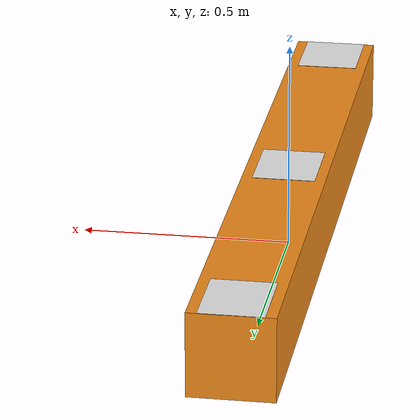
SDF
<?xml version='1.0'?>
<sdf version='1.6'>

<model name="single_orange_brick">
 	<link name="Orange_brick_link">
    <pose frame=''>0 0 0.1 0 -0 0</pose>

    <inertial>
		  <mass>0.02</mass>
      <inertia>
		    <ixx>0.0054666700</ixx>
        <ixy>0</ixy>
        <ixz>0</ixz>
        <iyy>0.0001333330</iyy>
        <iyz>0</iyz>
        <izz>0.0054666700</izz>
		  </inertia>
    </inertial>

    <visual name="visual">
		  <material>
			  <script>
				  <uri>gazebo.material</uri>
				  <name>Gazebo/Orange</name>
			  </script>
		  </material>
      <geometry>
        <box>
          <size>0.2 1.8 0.2</size>
        </box>
      </geometry>
    </visual>

    <visual name="visual FM plate 1">
      <pose>0 -0.805 0.1 0 -0 0</pose>
      <material>
			  <script>
				  <uri>gazebo.material</uri>
				  <name>Gazebo/White</name>
			  </script>
		  </material>
      <geometry>
        <box>
          <size>0.150 0.190 0.001</size>
        </box>
      </geometry>
    </visual>

    <visual name="visual FM plate 2">
      <pose>0 0 0.1 0 -0 0</pose>
      <material>
			  <script>
				  <uri>gazebo.material</uri>
				  <name>Gazebo/White</name>
			  </script>
		  </material>
      <geometry>
        <box>
          <size>0.150 0.190 0.001</size>
        </box>
      </geometry>
    </visual>

    <visual name="visual FM plate 3">
      <pose>0 0.805 0.1 0 -0 0</pose>
      <material>
			  <script>
				  <uri>gazebo.material</uri>
				  <name>Gazebo/White</name>
			  </script>
		  </material>
      <geometry>
        <box>
          <size>0.150 0.190 0.001</size>
        </box>
      </geometry>
    </visual>

    <collision name="collision">
      <geometry>
        <box>
          <size>0.2 1.8 0.2</size>
        </box>
      </geometry>
    </collision>
  </link>
</model>

</sdf>
